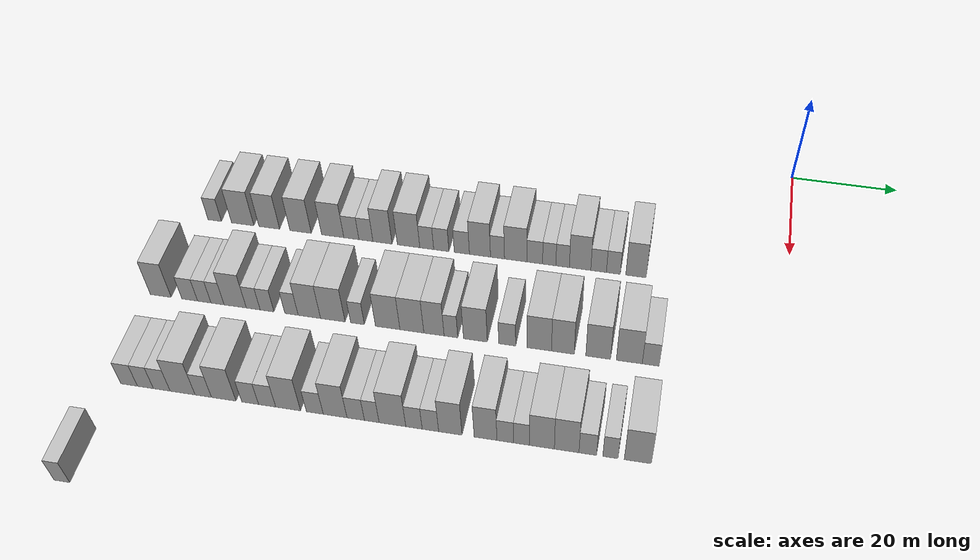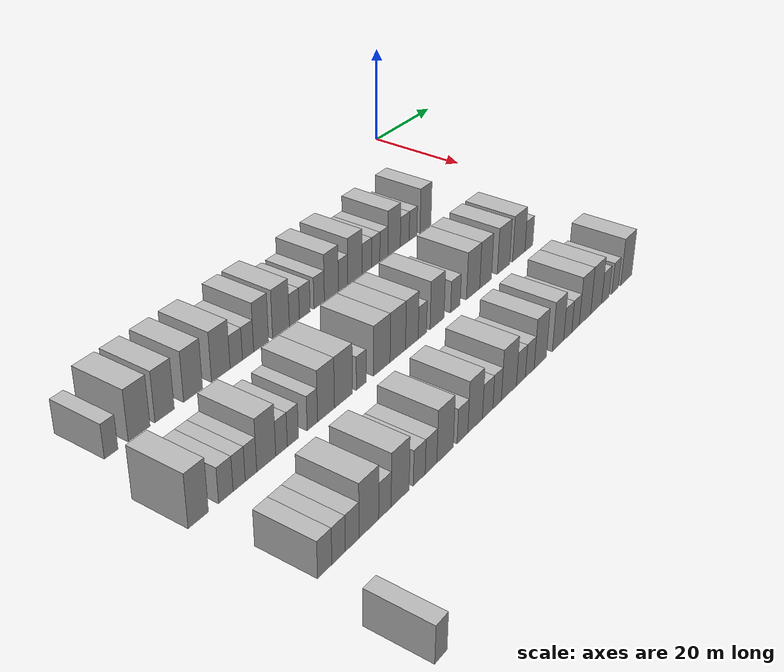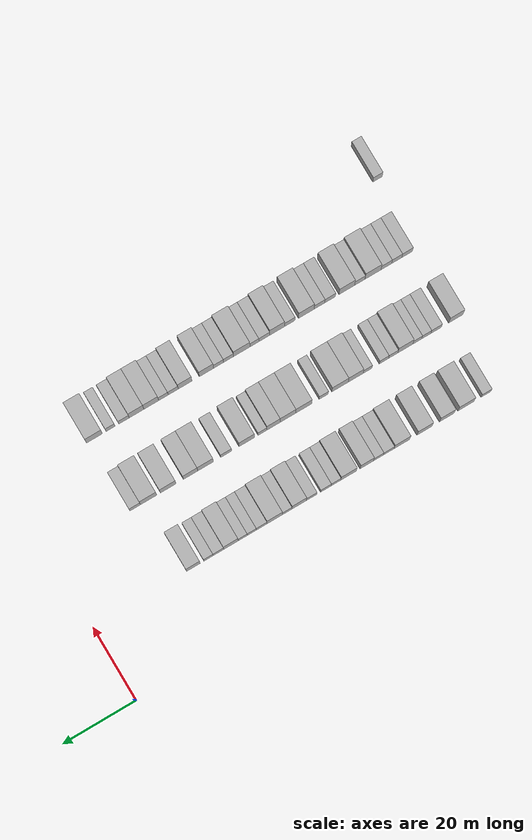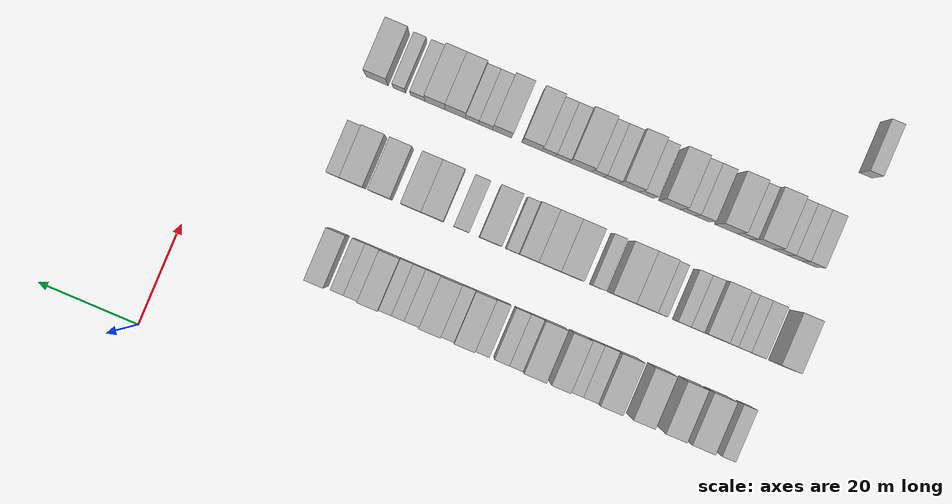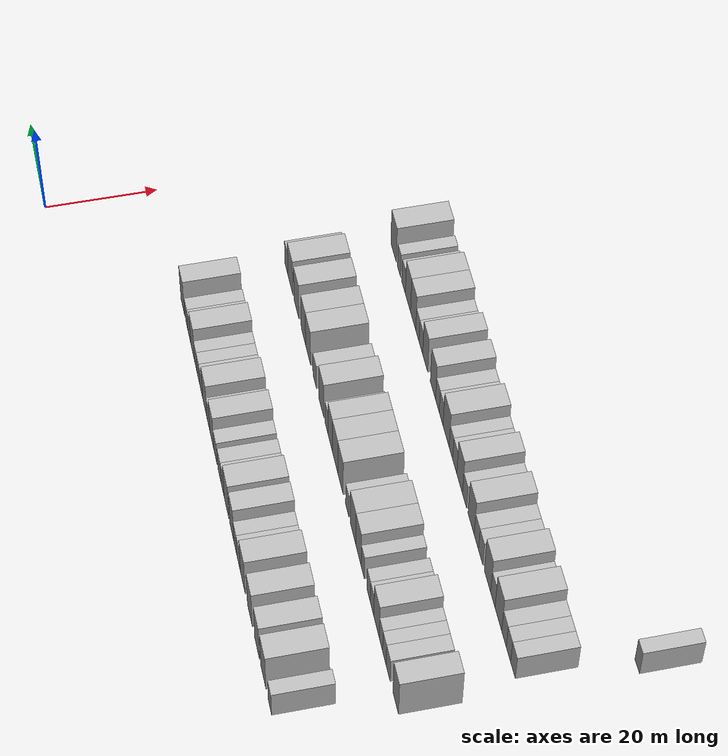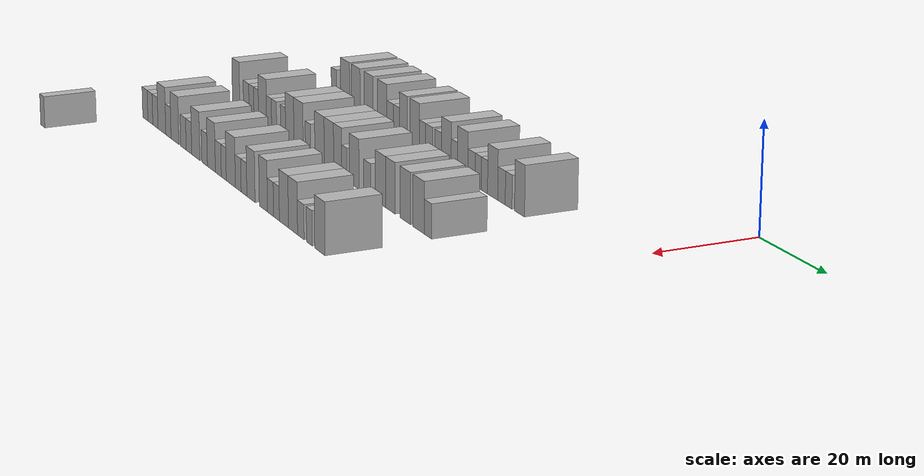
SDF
<sdf version="1.6">
 <world name="default">
  <model name="building_58">
   <static>1</static>
   <pose>25.0000 -107.1280 0 0.000000 0.000000 0.000000</pose>
   <link name="link">
    <pose>0 0 3.00 0 0 0</pose>
    <collision name="collision"><geometry><box><size>10.0000 2.6391 6.0000</size></box></geometry></collision>
    <visual name="visual">
     <cast_shadows>0</cast_shadows>
     <geometry><box><size>10.0000 2.6391 6.0000</size></box></geometry>
     <material>
      <script>
       <uri>model://HANNAS_wall/materials/scripts</uri>
       <uri>model://HANNAS_wall/materials/textures</uri>
       <name>vrc/HANNAS_wall</name>
      </script>
     </material>
    </visual>
   </link>
  </model>
  <model name="building_59">
   <static>1</static>
   <pose>25.0000 -101.6160 0 0.000000 0.000000 0.000000</pose>
   <link name="link">
    <pose>0 0 4.50 0 0 0</pose>
    <collision name="collision"><geometry><box><size>10.0000 4.3848 9.0000</size></box></geometry></collision>
    <visual name="visual">
     <cast_shadows>0</cast_shadows>
     <geometry><box><size>10.0000 4.3848 9.0000</size></box></geometry>
     <material>
      <script>
       <uri>model://HANNAS_wall/materials/scripts</uri>
       <uri>model://HANNAS_wall/materials/textures</uri>
       <name>vrc/HANNAS_wall</name>
      </script>
     </material>
    </visual>
   </link>
  </model>
  <model name="building_60">
   <static>1</static>
   <pose>25.0000 -96.4047 0 0.000000 0.000000 0.000000</pose>
   <link name="link">
    <pose>0 0 4.50 0 0 0</pose>
    <collision name="collision"><geometry><box><size>10.0000 4.0377 9.0000</size></box></geometry></collision>
    <visual name="visual">
     <cast_shadows>0</cast_shadows>
     <geometry><box><size>10.0000 4.0377 9.0000</size></box></geometry>
     <material>
      <script>
       <uri>model://HANNAS_wall/materials/scripts</uri>
       <uri>model://HANNAS_wall/materials/textures</uri>
       <name>vrc/HANNAS_wall</name>
      </script>
     </material>
    </visual>
   </link>
  </model>
  <model name="building_61">
   <static>1</static>
   <pose>25.0000 -90.3034 0 0.000000 0.000000 0.000000</pose>
   <link name="link">
    <pose>0 0 4.50 0 0 0</pose>
    <collision name="collision"><geometry><box><size>10.0000 4.1649 9.0000</size></box></geometry></collision>
    <visual name="visual">
     <cast_shadows>0</cast_shadows>
     <geometry><box><size>10.0000 4.1649 9.0000</size></box></geometry>
     <material>
      <script>
       <uri>model://HANNAS_wall/materials/scripts</uri>
       <uri>model://HANNAS_wall/materials/textures</uri>
       <name>vrc/HANNAS_wall</name>
      </script>
     </material>
    </visual>
   </link>
  </model>
  <model name="building_62">
   <static>1</static>
   <pose>25.0000 -84.0807 0 0.000000 0.000000 0.000000</pose>
   <link name="link">
    <pose>0 0 4.50 0 0 0</pose>
    <collision name="collision"><geometry><box><size>10.0000 4.2804 9.0000</size></box></geometry></collision>
    <visual name="visual">
     <cast_shadows>0</cast_shadows>
     <geometry><box><size>10.0000 4.2804 9.0000</size></box></geometry>
     <material>
      <script>
       <uri>model://HANNAS_wall/materials/scripts</uri>
       <uri>model://HANNAS_wall/materials/textures</uri>
       <name>vrc/HANNAS_wall</name>
      </script>
     </material>
    </visual>
   </link>
  </model>
  <model name="building_63">
   <static>1</static>
   <pose>25.0000 -80.4880 0 0.000000 0.000000 0.000000</pose>
   <link name="link">
    <pose>0 0 3.00 0 0 0</pose>
    <collision name="collision"><geometry><box><size>10.0000 2.9050 6.0000</size></box></geometry></collision>
    <visual name="visual">
     <cast_shadows>0</cast_shadows>
     <geometry><box><size>10.0000 2.9050 6.0000</size></box></geometry>
     <material>
      <script>
       <uri>model://HANNAS_wall/materials/scripts</uri>
       <uri>model://HANNAS_wall/materials/textures</uri>
       <name>vrc/HANNAS_wall</name>
      </script>
     </material>
    </visual>
   </link>
  </model>
  <model name="building_64">
   <static>1</static>
   <pose>25.0000 -77.6878 0 0.000000 0.000000 0.000000</pose>
   <link name="link">
    <pose>0 0 3.00 0 0 0</pose>
    <collision name="collision"><geometry><box><size>10.0000 2.6953 6.0000</size></box></geometry></collision>
    <visual name="visual">
     <cast_shadows>0</cast_shadows>
     <geometry><box><size>10.0000 2.6953 6.0000</size></box></geometry>
     <material>
      <script>
       <uri>model://HANNAS_wall/materials/scripts</uri>
       <uri>model://HANNAS_wall/materials/textures</uri>
       <name>vrc/HANNAS_wall</name>
      </script>
     </material>
    </visual>
   </link>
  </model>
  <model name="building_65">
   <static>1</static>
   <pose>25.0000 -74.5116 0 0.000000 0.000000 0.000000</pose>
   <link name="link">
    <pose>0 0 4.50 0 0 0</pose>
    <collision name="collision"><geometry><box><size>10.0000 3.6572 9.0000</size></box></geometry></collision>
    <visual name="visual">
     <cast_shadows>0</cast_shadows>
     <geometry><box><size>10.0000 3.6572 9.0000</size></box></geometry>
     <material>
      <script>
       <uri>model://HANNAS_wall/materials/scripts</uri>
       <uri>model://HANNAS_wall/materials/textures</uri>
       <name>vrc/HANNAS_wall</name>
      </script>
     </material>
    </visual>
   </link>
  </model>
  <model name="building_66">
   <static>1</static>
   <pose>25.0000 -69.5431 0 0.000000 0.000000 0.000000</pose>
   <link name="link">
    <pose>0 0 4.50 0 0 0</pose>
    <collision name="collision"><geometry><box><size>10.0000 4.2797 9.0000</size></box></geometry></collision>
    <visual name="visual">
     <cast_shadows>0</cast_shadows>
     <geometry><box><size>10.0000 4.2797 9.0000</size></box></geometry>
     <material>
      <script>
       <uri>model://HANNAS_wall/materials/scripts</uri>
       <uri>model://HANNAS_wall/materials/textures</uri>
       <name>vrc/HANNAS_wall</name>
      </script>
     </material>
    </visual>
   </link>
  </model>
  <model name="building_67">
   <static>1</static>
   <pose>25.0000 -66.0903 0 0.000000 0.000000 0.000000</pose>
   <link name="link">
    <pose>0 0 3.00 0 0 0</pose>
    <collision name="collision"><geometry><box><size>10.0000 2.6259 6.0000</size></box></geometry></collision>
    <visual name="visual">
     <cast_shadows>0</cast_shadows>
     <geometry><box><size>10.0000 2.6259 6.0000</size></box></geometry>
     <material>
      <script>
       <uri>model://HANNAS_wall/materials/scripts</uri>
       <uri>model://HANNAS_wall/materials/textures</uri>
       <name>vrc/HANNAS_wall</name>
      </script>
     </material>
    </visual>
   </link>
  </model>
  <model name="building_68">
   <static>1</static>
   <pose>25.0000 -63.3361 0 0.000000 0.000000 0.000000</pose>
   <link name="link">
    <pose>0 0 3.00 0 0 0</pose>
    <collision name="collision"><geometry><box><size>10.0000 2.8825 6.0000</size></box></geometry></collision>
    <visual name="visual">
     <cast_shadows>0</cast_shadows>
     <geometry><box><size>10.0000 2.8825 6.0000</size></box></geometry>
     <material>
      <script>
       <uri>model://HANNAS_wall/materials/scripts</uri>
       <uri>model://HANNAS_wall/materials/textures</uri>
       <name>vrc/HANNAS_wall</name>
      </script>
     </material>
    </visual>
   </link>
  </model>
  <model name="building_69">
   <static>1</static>
   <pose>25.0000 -59.4682 0 0.000000 0.000000 0.000000</pose>
   <link name="link">
    <pose>0 0 3.00 0 0 0</pose>
    <collision name="collision"><geometry><box><size>10.0000 2.8532 6.0000</size></box></geometry></collision>
    <visual name="visual">
     <cast_shadows>0</cast_shadows>
     <geometry><box><size>10.0000 2.8532 6.0000</size></box></geometry>
     <material>
      <script>
       <uri>model://HANNAS_wall/materials/scripts</uri>
       <uri>model://HANNAS_wall/materials/textures</uri>
       <name>vrc/HANNAS_wall</name>
      </script>
     </material>
    </visual>
   </link>
  </model>
  <model name="building_70">
   <static>1</static>
   <pose>25.0000 -56.0699 0 0.000000 0.000000 0.000000</pose>
   <link name="link">
    <pose>0 0 4.50 0 0 0</pose>
    <collision name="collision"><geometry><box><size>10.0000 3.9436 9.0000</size></box></geometry></collision>
    <visual name="visual">
     <cast_shadows>0</cast_shadows>
     <geometry><box><size>10.0000 3.9436 9.0000</size></box></geometry>
     <material>
      <script>
       <uri>model://HANNAS_wall/materials/scripts</uri>
       <uri>model://HANNAS_wall/materials/textures</uri>
       <name>vrc/HANNAS_wall</name>
      </script>
     </material>
    </visual>
   </link>
  </model>
  <model name="building_71">
   <static>1</static>
   <pose>25.0000 -52.7900 0 0.000000 0.000000 0.000000</pose>
   <link name="link">
    <pose>0 0 3.00 0 0 0</pose>
    <collision name="collision"><geometry><box><size>10.0000 2.6162 6.0000</size></box></geometry></collision>
    <visual name="visual">
     <cast_shadows>0</cast_shadows>
     <geometry><box><size>10.0000 2.6162 6.0000</size></box></geometry>
     <material>
      <script>
       <uri>model://HANNAS_wall/materials/scripts</uri>
       <uri>model://HANNAS_wall/materials/textures</uri>
       <name>vrc/HANNAS_wall</name>
      </script>
     </material>
    </visual>
   </link>
  </model>
  <model name="building_72">
   <static>1</static>
   <pose>25.0000 -49.3965 0 0.000000 0.000000 0.000000</pose>
   <link name="link">
    <pose>0 0 4.50 0 0 0</pose>
    <collision name="collision"><geometry><box><size>10.0000 4.1708 9.0000</size></box></geometry></collision>
    <visual name="visual">
     <cast_shadows>0</cast_shadows>
     <geometry><box><size>10.0000 4.1708 9.0000</size></box></geometry>
     <material>
      <script>
       <uri>model://HANNAS_wall/materials/scripts</uri>
       <uri>model://HANNAS_wall/materials/textures</uri>
       <name>vrc/HANNAS_wall</name>
      </script>
     </material>
    </visual>
   </link>
  </model>
  <model name="building_73">
   <static>1</static>
   <pose>25.0000 -45.8571 0 0.000000 0.000000 0.000000</pose>
   <link name="link">
    <pose>0 0 3.00 0 0 0</pose>
    <collision name="collision"><geometry><box><size>10.0000 2.9080 6.0000</size></box></geometry></collision>
    <visual name="visual">
     <cast_shadows>0</cast_shadows>
     <geometry><box><size>10.0000 2.9080 6.0000</size></box></geometry>
     <material>
      <script>
       <uri>model://HANNAS_wall/materials/scripts</uri>
       <uri>model://HANNAS_wall/materials/textures</uri>
       <name>vrc/HANNAS_wall</name>
      </script>
     </material>
    </visual>
   </link>
  </model>
  <model name="building_74">
   <static>1</static>
   <pose>25.0000 -43.1696 0 0.000000 0.000000 0.000000</pose>
   <link name="link">
    <pose>0 0 3.00 0 0 0</pose>
    <collision name="collision"><geometry><box><size>10.0000 2.4669 6.0000</size></box></geometry></collision>
    <visual name="visual">
     <cast_shadows>0</cast_shadows>
     <geometry><box><size>10.0000 2.4669 6.0000</size></box></geometry>
     <material>
      <script>
       <uri>model://HANNAS_wall/materials/scripts</uri>
       <uri>model://HANNAS_wall/materials/textures</uri>
       <name>vrc/HANNAS_wall</name>
      </script>
     </material>
    </visual>
   </link>
  </model>
  <model name="building_75">
   <static>1</static>
   <pose>25.0000 -40.7005 0 0.000000 0.000000 0.000000</pose>
   <link name="link">
    <pose>0 0 3.00 0 0 0</pose>
    <collision name="collision"><geometry><box><size>10.0000 2.4714 6.0000</size></box></geometry></collision>
    <visual name="visual">
     <cast_shadows>0</cast_shadows>
     <geometry><box><size>10.0000 2.4714 6.0000</size></box></geometry>
     <material>
      <script>
       <uri>model://HANNAS_wall/materials/scripts</uri>
       <uri>model://HANNAS_wall/materials/textures</uri>
       <name>vrc/HANNAS_wall</name>
      </script>
     </material>
    </visual>
   </link>
  </model>
  <model name="building_76">
   <static>1</static>
   <pose>25.0000 -37.4976 0 0.000000 0.000000 0.000000</pose>
   <link name="link">
    <pose>0 0 4.50 0 0 0</pose>
    <collision name="collision"><geometry><box><size>10.0000 3.9343 9.0000</size></box></geometry></collision>
    <visual name="visual">
     <cast_shadows>0</cast_shadows>
     <geometry><box><size>10.0000 3.9343 9.0000</size></box></geometry>
     <material>
      <script>
       <uri>model://HANNAS_wall/materials/scripts</uri>
       <uri>model://HANNAS_wall/materials/textures</uri>
       <name>vrc/HANNAS_wall</name>
      </script>
     </material>
    </visual>
   </link>
  </model>
  <model name="building_77">
   <static>1</static>
   <pose>25.0000 -34.1008 0 0.000000 0.000000 0.000000</pose>
   <link name="link">
    <pose>0 0 3.00 0 0 0</pose>
    <collision name="collision"><geometry><box><size>10.0000 2.8594 6.0000</size></box></geometry></collision>
    <visual name="visual">
     <cast_shadows>0</cast_shadows>
     <geometry><box><size>10.0000 2.8594 6.0000</size></box></geometry>
     <material>
      <script>
       <uri>model://HANNAS_wall/materials/scripts</uri>
       <uri>model://HANNAS_wall/materials/textures</uri>
       <name>vrc/HANNAS_wall</name>
      </script>
     </material>
    </visual>
   </link>
  </model>
  <model name="building_78">
   <static>1</static>
   <pose>25.0000 -31.4041 0 0.000000 0.000000 0.000000</pose>
   <link name="link">
    <pose>0 0 3.00 0 0 0</pose>
    <collision name="collision"><geometry><box><size>10.0000 2.5339 6.0000</size></box></geometry></collision>
    <visual name="visual">
     <cast_shadows>0</cast_shadows>
     <geometry><box><size>10.0000 2.5339 6.0000</size></box></geometry>
     <material>
      <script>
       <uri>model://HANNAS_wall/materials/scripts</uri>
       <uri>model://HANNAS_wall/materials/textures</uri>
       <name>vrc/HANNAS_wall</name>
      </script>
     </material>
    </visual>
   </link>
  </model>
  <model name="building_79">
   <static>1</static>
   <pose>25.0000 -27.2897 0 0.000000 0.000000 0.000000</pose>
   <link name="link">
    <pose>0 0 4.50 0 0 0</pose>
    <collision name="collision"><geometry><box><size>10.0000 3.6949 9.0000</size></box></geometry></collision>
    <visual name="visual">
     <cast_shadows>0</cast_shadows>
     <geometry><box><size>10.0000 3.6949 9.0000</size></box></geometry>
     <material>
      <script>
       <uri>model://HANNAS_wall/materials/scripts</uri>
       <uri>model://HANNAS_wall/materials/textures</uri>
       <name>vrc/HANNAS_wall</name>
      </script>
     </material>
    </visual>
   </link>
  </model>
  <model name="building_230">
   <static>1</static>
   <pose>44.0000 -110.2824 0 0.000000 0.000000 0.000000</pose>
   <link name="link">
    <pose>0 0 4.50 0 0 0</pose>
    <collision name="collision"><geometry><box><size>10.0000 3.9110 9.0000</size></box></geometry></collision>
    <visual name="visual">
     <cast_shadows>0</cast_shadows>
     <geometry><box><size>10.0000 3.9110 9.0000</size></box></geometry>
     <material>
      <script>
       <uri>model://HANNAS_wall/materials/scripts</uri>
       <uri>model://HANNAS_wall/materials/textures</uri>
       <name>vrc/HANNAS_wall</name>
      </script>
     </material>
    </visual>
   </link>
  </model>
  <model name="building_231">
   <static>1</static>
   <pose>44.0000 -104.8564 0 0.000000 0.000000 0.000000</pose>
   <link name="link">
    <pose>0 0 3.00 0 0 0</pose>
    <collision name="collision"><geometry><box><size>10.0000 2.9410 6.0000</size></box></geometry></collision>
    <visual name="visual">
     <cast_shadows>0</cast_shadows>
     <geometry><box><size>10.0000 2.9410 6.0000</size></box></geometry>
     <material>
      <script>
       <uri>model://HANNAS_wall/materials/scripts</uri>
       <uri>model://HANNAS_wall/materials/textures</uri>
       <name>vrc/HANNAS_wall</name>
      </script>
     </material>
    </visual>
   </link>
  </model>
  <model name="building_232">
   <static>1</static>
   <pose>44.0000 -102.1391 0 0.000000 0.000000 0.000000</pose>
   <link name="link">
    <pose>0 0 3.00 0 0 0</pose>
    <collision name="collision"><geometry><box><size>10.0000 2.4936 6.0000</size></box></geometry></collision>
    <visual name="visual">
     <cast_shadows>0</cast_shadows>
     <geometry><box><size>10.0000 2.4936 6.0000</size></box></geometry>
     <material>
      <script>
       <uri>model://HANNAS_wall/materials/scripts</uri>
       <uri>model://HANNAS_wall/materials/textures</uri>
       <name>vrc/HANNAS_wall</name>
      </script>
     </material>
    </visual>
   </link>
  </model>
  <model name="building_233">
   <static>1</static>
   <pose>44.0000 -99.6777 0 0.000000 0.000000 0.000000</pose>
   <link name="link">
    <pose>0 0 3.00 0 0 0</pose>
    <collision name="collision"><geometry><box><size>10.0000 2.4291 6.0000</size></box></geometry></collision>
    <visual name="visual">
     <cast_shadows>0</cast_shadows>
     <geometry><box><size>10.0000 2.4291 6.0000</size></box></geometry>
     <material>
      <script>
       <uri>model://HANNAS_wall/materials/scripts</uri>
       <uri>model://HANNAS_wall/materials/textures</uri>
       <name>vrc/HANNAS_wall</name>
      </script>
     </material>
    </visual>
   </link>
  </model>
  <model name="building_234">
   <static>1</static>
   <pose>44.0000 -96.4054 0 0.000000 0.000000 0.000000</pose>
   <link name="link">
    <pose>0 0 4.50 0 0 0</pose>
    <collision name="collision"><geometry><box><size>10.0000 4.1155 9.0000</size></box></geometry></collision>
    <visual name="visual">
     <cast_shadows>0</cast_shadows>
     <geometry><box><size>10.0000 4.1155 9.0000</size></box></geometry>
     <material>
      <script>
       <uri>model://HANNAS_wall/materials/scripts</uri>
       <uri>model://HANNAS_wall/materials/textures</uri>
       <name>vrc/HANNAS_wall</name>
      </script>
     </material>
    </visual>
   </link>
  </model>
  <model name="building_235">
   <static>1</static>
   <pose>44.0000 -93.0726 0 0.000000 0.000000 0.000000</pose>
   <link name="link">
    <pose>0 0 3.00 0 0 0</pose>
    <collision name="collision"><geometry><box><size>10.0000 2.5501 6.0000</size></box></geometry></collision>
    <visual name="visual">
     <cast_shadows>0</cast_shadows>
     <geometry><box><size>10.0000 2.5501 6.0000</size></box></geometry>
     <material>
      <script>
       <uri>model://HANNAS_wall/materials/scripts</uri>
       <uri>model://HANNAS_wall/materials/textures</uri>
       <name>vrc/HANNAS_wall</name>
      </script>
     </material>
    </visual>
   </link>
  </model>
  <model name="building_236">
   <static>1</static>
   <pose>44.0000 -90.5318 0 0.000000 0.000000 0.000000</pose>
   <link name="link">
    <pose>0 0 3.00 0 0 0</pose>
    <collision name="collision"><geometry><box><size>10.0000 2.5314 6.0000</size></box></geometry></collision>
    <visual name="visual">
     <cast_shadows>0</cast_shadows>
     <geometry><box><size>10.0000 2.5314 6.0000</size></box></geometry>
     <material>
      <script>
       <uri>model://HANNAS_wall/materials/scripts</uri>
       <uri>model://HANNAS_wall/materials/textures</uri>
       <name>vrc/HANNAS_wall</name>
      </script>
     </material>
    </visual>
   </link>
  </model>
  <model name="building_237">
   <static>1</static>
   <pose>44.0000 -86.0445 0 0.000000 0.000000 0.000000</pose>
   <link name="link">
    <pose>0 0 3.00 0 0 0</pose>
    <collision name="collision"><geometry><box><size>10.0000 2.4433 6.0000</size></box></geometry></collision>
    <visual name="visual">
     <cast_shadows>0</cast_shadows>
     <geometry><box><size>10.0000 2.4433 6.0000</size></box></geometry>
     <material>
      <script>
       <uri>model://HANNAS_wall/materials/scripts</uri>
       <uri>model://HANNAS_wall/materials/textures</uri>
       <name>vrc/HANNAS_wall</name>
      </script>
     </material>
    </visual>
   </link>
  </model>
  <model name="building_238">
   <static>1</static>
   <pose>44.0000 -82.7851 0 0.000000 0.000000 0.000000</pose>
   <link name="link">
    <pose>0 0 4.50 0 0 0</pose>
    <collision name="collision"><geometry><box><size>10.0000 4.0754 9.0000</size></box></geometry></collision>
    <visual name="visual">
     <cast_shadows>0</cast_shadows>
     <geometry><box><size>10.0000 4.0754 9.0000</size></box></geometry>
     <material>
      <script>
       <uri>model://HANNAS_wall/materials/scripts</uri>
       <uri>model://HANNAS_wall/materials/textures</uri>
       <name>vrc/HANNAS_wall</name>
      </script>
     </material>
    </visual>
   </link>
  </model>
  <model name="building_239">
   <static>1</static>
   <pose>44.0000 -78.5192 0 0.000000 0.000000 0.000000</pose>
   <link name="link">
    <pose>0 0 4.50 0 0 0</pose>
    <collision name="collision"><geometry><box><size>10.0000 4.4563 9.0000</size></box></geometry></collision>
    <visual name="visual">
     <cast_shadows>0</cast_shadows>
     <geometry><box><size>10.0000 4.4563 9.0000</size></box></geometry>
     <material>
      <script>
       <uri>model://HANNAS_wall/materials/scripts</uri>
       <uri>model://HANNAS_wall/materials/textures</uri>
       <name>vrc/HANNAS_wall</name>
      </script>
     </material>
    </visual>
   </link>
  </model>
  <model name="building_240">
   <static>1</static>
   <pose>44.0000 -74.0498 0 0.000000 0.000000 0.000000</pose>
   <link name="link">
    <pose>0 0 3.00 0 0 0</pose>
    <collision name="collision"><geometry><box><size>10.0000 2.4825 6.0000</size></box></geometry></collision>
    <visual name="visual">
     <cast_shadows>0</cast_shadows>
     <geometry><box><size>10.0000 2.4825 6.0000</size></box></geometry>
     <material>
      <script>
       <uri>model://HANNAS_wall/materials/scripts</uri>
       <uri>model://HANNAS_wall/materials/textures</uri>
       <name>vrc/HANNAS_wall</name>
      </script>
     </material>
    </visual>
   </link>
  </model>
  <model name="building_241">
   <static>1</static>
   <pose>44.0000 -68.6111 0 0.000000 0.000000 0.000000</pose>
   <link name="link">
    <pose>0 0 4.50 0 0 0</pose>
    <collision name="collision"><geometry><box><size>10.0000 4.3949 9.0000</size></box></geometry></collision>
    <visual name="visual">
     <cast_shadows>0</cast_shadows>
     <geometry><box><size>10.0000 4.3949 9.0000</size></box></geometry>
     <material>
      <script>
       <uri>model://HANNAS_wall/materials/scripts</uri>
       <uri>model://HANNAS_wall/materials/textures</uri>
       <name>vrc/HANNAS_wall</name>
      </script>
     </material>
    </visual>
   </link>
  </model>
  <model name="building_242">
   <static>1</static>
   <pose>44.0000 -64.2810 0 0.000000 0.000000 0.000000</pose>
   <link name="link">
    <pose>0 0 4.50 0 0 0</pose>
    <collision name="collision"><geometry><box><size>10.0000 4.2653 9.0000</size></box></geometry></collision>
    <visual name="visual">
     <cast_shadows>0</cast_shadows>
     <geometry><box><size>10.0000 4.2653 9.0000</size></box></geometry>
     <material>
      <script>
       <uri>model://HANNAS_wall/materials/scripts</uri>
       <uri>model://HANNAS_wall/materials/textures</uri>
       <name>vrc/HANNAS_wall</name>
      </script>
     </material>
    </visual>
   </link>
  </model>
  <model name="building_243">
   <static>1</static>
   <pose>44.0000 -60.3481 0 0.000000 0.000000 0.000000</pose>
   <link name="link">
    <pose>0 0 4.50 0 0 0</pose>
    <collision name="collision"><geometry><box><size>10.0000 3.6004 9.0000</size></box></geometry></collision>
    <visual name="visual">
     <cast_shadows>0</cast_shadows>
     <geometry><box><size>10.0000 3.6004 9.0000</size></box></geometry>
     <material>
      <script>
       <uri>model://HANNAS_wall/materials/scripts</uri>
       <uri>model://HANNAS_wall/materials/textures</uri>
       <name>vrc/HANNAS_wall</name>
      </script>
     </material>
    </visual>
   </link>
  </model>
  <model name="building_244">
   <static>1</static>
   <pose>44.0000 -57.3349 0 0.000000 0.000000 0.000000</pose>
   <link name="link">
    <pose>0 0 3.00 0 0 0</pose>
    <collision name="collision"><geometry><box><size>10.0000 2.4258 6.0000</size></box></geometry></collision>
    <visual name="visual">
     <cast_shadows>0</cast_shadows>
     <geometry><box><size>10.0000 2.4258 6.0000</size></box></geometry>
     <material>
      <script>
       <uri>model://HANNAS_wall/materials/scripts</uri>
       <uri>model://HANNAS_wall/materials/textures</uri>
       <name>vrc/HANNAS_wall</name>
      </script>
     </material>
    </visual>
   </link>
  </model>
  <model name="building_245">
   <static>1</static>
   <pose>44.0000 -53.0179 0 0.000000 0.000000 0.000000</pose>
   <link name="link">
    <pose>0 0 4.50 0 0 0</pose>
    <collision name="collision"><geometry><box><size>10.0000 4.2082 9.0000</size></box></geometry></collision>
    <visual name="visual">
     <cast_shadows>0</cast_shadows>
     <geometry><box><size>10.0000 4.2082 9.0000</size></box></geometry>
     <material>
      <script>
       <uri>model://HANNAS_wall/materials/scripts</uri>
       <uri>model://HANNAS_wall/materials/textures</uri>
       <name>vrc/HANNAS_wall</name>
      </script>
     </material>
    </visual>
   </link>
  </model>
  <model name="building_246">
   <static>1</static>
   <pose>44.0000 -47.4243 0 0.000000 0.000000 0.000000</pose>
   <link name="link">
    <pose>0 0 3.00 0 0 0</pose>
    <collision name="collision"><geometry><box><size>10.0000 2.9789 6.0000</size></box></geometry></collision>
    <visual name="visual">
     <cast_shadows>0</cast_shadows>
     <geometry><box><size>10.0000 2.9789 6.0000</size></box></geometry>
     <material>
      <script>
       <uri>model://HANNAS_wall/materials/scripts</uri>
       <uri>model://HANNAS_wall/materials/textures</uri>
       <name>vrc/HANNAS_wall</name>
      </script>
     </material>
    </visual>
   </link>
  </model>
  <model name="building_247">
   <static>1</static>
   <pose>44.0000 -41.8098 0 0.000000 0.000000 0.000000</pose>
   <link name="link">
    <pose>0 0 4.50 0 0 0</pose>
    <collision name="collision"><geometry><box><size>10.0000 4.2501 9.0000</size></box></geometry></collision>
    <visual name="visual">
     <cast_shadows>0</cast_shadows>
     <geometry><box><size>10.0000 4.2501 9.0000</size></box></geometry>
     <material>
      <script>
       <uri>model://HANNAS_wall/materials/scripts</uri>
       <uri>model://HANNAS_wall/materials/textures</uri>
       <name>vrc/HANNAS_wall</name>
      </script>
     </material>
    </visual>
   </link>
  </model>
  <model name="building_248">
   <static>1</static>
   <pose>44.0000 -37.7242 0 0.000000 0.000000 0.000000</pose>
   <link name="link">
    <pose>0 0 4.50 0 0 0</pose>
    <collision name="collision"><geometry><box><size>10.0000 3.9211 9.0000</size></box></geometry></collision>
    <visual name="visual">
     <cast_shadows>0</cast_shadows>
     <geometry><box><size>10.0000 3.9211 9.0000</size></box></geometry>
     <material>
      <script>
       <uri>model://HANNAS_wall/materials/scripts</uri>
       <uri>model://HANNAS_wall/materials/textures</uri>
       <name>vrc/HANNAS_wall</name>
      </script>
     </material>
    </visual>
   </link>
  </model>
  <model name="building_249">
   <static>1</static>
   <pose>44.0000 -31.6392 0 0.000000 0.000000 0.000000</pose>
   <link name="link">
    <pose>0 0 4.50 0 0 0</pose>
    <collision name="collision"><geometry><box><size>10.0000 4.2490 9.0000</size></box></geometry></collision>
    <visual name="visual">
     <cast_shadows>0</cast_shadows>
     <geometry><box><size>10.0000 4.2490 9.0000</size></box></geometry>
     <material>
      <script>
       <uri>model://HANNAS_wall/materials/scripts</uri>
       <uri>model://HANNAS_wall/materials/textures</uri>
       <name>vrc/HANNAS_wall</name>
      </script>
     </material>
    </visual>
   </link>
  </model>
  <model name="building_250">
   <static>1</static>
   <pose>44.0000 -26.3021 0 0.000000 0.000000 0.000000</pose>
   <link name="link">
    <pose>0 0 4.50 0 0 0</pose>
    <collision name="collision"><geometry><box><size>10.0000 4.4252 9.0000</size></box></geometry></collision>
    <visual name="visual">
     <cast_shadows>0</cast_shadows>
     <geometry><box><size>10.0000 4.4252 9.0000</size></box></geometry>
     <material>
      <script>
       <uri>model://HANNAS_wall/materials/scripts</uri>
       <uri>model://HANNAS_wall/materials/textures</uri>
       <name>vrc/HANNAS_wall</name>
      </script>
     </material>
    </visual>
   </link>
  </model>
  <model name="building_251">
   <static>1</static>
   <pose>44.0000 -22.6522 0 0.000000 0.000000 0.000000</pose>
   <link name="link">
    <pose>0 0 3.00 0 0 0</pose>
    <collision name="collision"><geometry><box><size>10.0000 2.8745 6.0000</size></box></geometry></collision>
    <visual name="visual">
     <cast_shadows>0</cast_shadows>
     <geometry><box><size>10.0000 2.8745 6.0000</size></box></geometry>
     <material>
      <script>
       <uri>model://HANNAS_wall/materials/scripts</uri>
       <uri>model://HANNAS_wall/materials/textures</uri>
       <name>vrc/HANNAS_wall</name>
      </script>
     </material>
    </visual>
   </link>
  </model>
  <model name="building_411">
   <static>1</static>
   <pose>63.0000 -108.2793 0 0.000000 0.000000 0.000000</pose>
   <link name="link">
    <pose>0 0 3.00 0 0 0</pose>
    <collision name="collision"><geometry><box><size>10.0000 2.9293 6.0000</size></box></geometry></collision>
    <visual name="visual">
     <cast_shadows>0</cast_shadows>
     <geometry><box><size>10.0000 2.9293 6.0000</size></box></geometry>
     <material>
      <script>
       <uri>model://HANNAS_wall/materials/scripts</uri>
       <uri>model://HANNAS_wall/materials/textures</uri>
       <name>vrc/HANNAS_wall</name>
      </script>
     </material>
    </visual>
   </link>
  </model>
  <model name="building_412">
   <static>1</static>
   <pose>63.0000 -105.4114 0 0.000000 0.000000 0.000000</pose>
   <link name="link">
    <pose>0 0 3.00 0 0 0</pose>
    <collision name="collision"><geometry><box><size>10.0000 2.8065 6.0000</size></box></geometry></collision>
    <visual name="visual">
     <cast_shadows>0</cast_shadows>
     <geometry><box><size>10.0000 2.8065 6.0000</size></box></geometry>
     <material>
      <script>
       <uri>model://HANNAS_wall/materials/scripts</uri>
       <uri>model://HANNAS_wall/materials/textures</uri>
       <name>vrc/HANNAS_wall</name>
      </script>
     </material>
    </visual>
   </link>
  </model>
  <model name="building_413">
   <static>1</static>
   <pose>63.0000 -102.5342 0 0.000000 0.000000 0.000000</pose>
   <link name="link">
    <pose>0 0 3.00 0 0 0</pose>
    <collision name="collision"><geometry><box><size>10.0000 2.9479 6.0000</size></box></geometry></collision>
    <visual name="visual">
     <cast_shadows>0</cast_shadows>
     <geometry><box><size>10.0000 2.9479 6.0000</size></box></geometry>
     <material>
      <script>
       <uri>model://HANNAS_wall/materials/scripts</uri>
       <uri>model://HANNAS_wall/materials/textures</uri>
       <name>vrc/HANNAS_wall</name>
      </script>
     </material>
    </visual>
   </link>
  </model>
  <model name="building_414">
   <static>1</static>
   <pose>63.0000 -98.8764 0 0.000000 0.000000 0.000000</pose>
   <link name="link">
    <pose>0 0 4.50 0 0 0</pose>
    <collision name="collision"><geometry><box><size>10.0000 4.3677 9.0000</size></box></geometry></collision>
    <visual name="visual">
     <cast_shadows>0</cast_shadows>
     <geometry><box><size>10.0000 4.3677 9.0000</size></box></geometry>
     <material>
      <script>
       <uri>model://HANNAS_wall/materials/scripts</uri>
       <uri>model://HANNAS_wall/materials/textures</uri>
       <name>vrc/HANNAS_wall</name>
      </script>
     </material>
    </visual>
   </link>
  </model>
  <model name="building_415">
   <static>1</static>
   <pose>63.0000 -95.2642 0 0.000000 0.000000 0.000000</pose>
   <link name="link">
    <pose>0 0 3.00 0 0 0</pose>
    <collision name="collision"><geometry><box><size>10.0000 2.8566 6.0000</size></box></geometry></collision>
    <visual name="visual">
     <cast_shadows>0</cast_shadows>
     <geometry><box><size>10.0000 2.8566 6.0000</size></box></geometry>
     <material>
      <script>
       <uri>model://HANNAS_wall/materials/scripts</uri>
       <uri>model://HANNAS_wall/materials/textures</uri>
       <name>vrc/HANNAS_wall</name>
      </script>
     </material>
    </visual>
   </link>
  </model>
  <model name="building_416">
   <static>1</static>
   <pose>63.0000 -91.7037 0 0.000000 0.000000 0.000000</pose>
   <link name="link">
    <pose>0 0 4.50 0 0 0</pose>
    <collision name="collision"><geometry><box><size>10.0000 4.2643 9.0000</size></box></geometry></collision>
    <visual name="visual">
     <cast_shadows>0</cast_shadows>
     <geometry><box><size>10.0000 4.2643 9.0000</size></box></geometry>
     <material>
      <script>
       <uri>model://HANNAS_wall/materials/scripts</uri>
       <uri>model://HANNAS_wall/materials/textures</uri>
       <name>vrc/HANNAS_wall</name>
      </script>
     </material>
    </visual>
   </link>
  </model>
  <model name="building_417">
   <static>1</static>
   <pose>63.0000 -87.1186 0 0.000000 0.000000 0.000000</pose>
   <link name="link">
    <pose>0 0 3.00 0 0 0</pose>
    <collision name="collision"><geometry><box><size>10.0000 2.9060 6.0000</size></box></geometry></collision>
    <visual name="visual">
     <cast_shadows>0</cast_shadows>
     <geometry><box><size>10.0000 2.9060 6.0000</size></box></geometry>
     <material>
      <script>
       <uri>model://HANNAS_wall/materials/scripts</uri>
       <uri>model://HANNAS_wall/materials/textures</uri>
       <name>vrc/HANNAS_wall</name>
      </script>
     </material>
    </visual>
   </link>
  </model>
  <model name="building_418">
   <static>1</static>
   <pose>63.0000 -84.1952 0 0.000000 0.000000 0.000000</pose>
   <link name="link">
    <pose>0 0 3.00 0 0 0</pose>
    <collision name="collision"><geometry><box><size>10.0000 2.9407 6.0000</size></box></geometry></collision>
    <visual name="visual">
     <cast_shadows>0</cast_shadows>
     <geometry><box><size>10.0000 2.9407 6.0000</size></box></geometry>
     <material>
      <script>
       <uri>model://HANNAS_wall/materials/scripts</uri>
       <uri>model://HANNAS_wall/materials/textures</uri>
       <name>vrc/HANNAS_wall</name>
      </script>
     </material>
    </visual>
   </link>
  </model>
  <model name="building_419">
   <static>1</static>
   <pose>63.0000 -80.5950 0 0.000000 0.000000 0.000000</pose>
   <link name="link">
    <pose>0 0 4.50 0 0 0</pose>
    <collision name="collision"><geometry><box><size>10.0000 4.2596 9.0000</size></box></geometry></collision>
    <visual name="visual">
     <cast_shadows>0</cast_shadows>
     <geometry><box><size>10.0000 4.2596 9.0000</size></box></geometry>
     <material>
      <script>
       <uri>model://HANNAS_wall/materials/scripts</uri>
       <uri>model://HANNAS_wall/materials/textures</uri>
       <name>vrc/HANNAS_wall</name>
      </script>
     </material>
    </visual>
   </link>
  </model>
  <model name="building_420">
   <static>1</static>
   <pose>63.0000 -76.0301 0 0.000000 0.000000 0.000000</pose>
   <link name="link">
    <pose>0 0 3.00 0 0 0</pose>
    <collision name="collision"><geometry><box><size>10.0000 2.8703 6.0000</size></box></geometry></collision>
    <visual name="visual">
     <cast_shadows>0</cast_shadows>
     <geometry><box><size>10.0000 2.8703 6.0000</size></box></geometry>
     <material>
      <script>
       <uri>model://HANNAS_wall/materials/scripts</uri>
       <uri>model://HANNAS_wall/materials/textures</uri>
       <name>vrc/HANNAS_wall</name>
      </script>
     </material>
    </visual>
   </link>
  </model>
  <model name="building_421">
   <static>1</static>
   <pose>63.0000 -72.5789 0 0.000000 0.000000 0.000000</pose>
   <link name="link">
    <pose>0 0 4.50 0 0 0</pose>
    <collision name="collision"><geometry><box><size>10.0000 4.0320 9.0000</size></box></geometry></collision>
    <visual name="visual">
     <cast_shadows>0</cast_shadows>
     <geometry><box><size>10.0000 4.0320 9.0000</size></box></geometry>
     <material>
      <script>
       <uri>model://HANNAS_wall/materials/scripts</uri>
       <uri>model://HANNAS_wall/materials/textures</uri>
       <name>vrc/HANNAS_wall</name>
      </script>
     </material>
    </visual>
   </link>
  </model>
  <model name="building_422">
   <static>1</static>
   <pose>63.0000 -69.0862 0 0.000000 0.000000 0.000000</pose>
   <link name="link">
    <pose>0 0 3.00 0 0 0</pose>
    <collision name="collision"><geometry><box><size>10.0000 2.9534 6.0000</size></box></geometry></collision>
    <visual name="visual">
     <cast_shadows>0</cast_shadows>
     <geometry><box><size>10.0000 2.9534 6.0000</size></box></geometry>
     <material>
      <script>
       <uri>model://HANNAS_wall/materials/scripts</uri>
       <uri>model://HANNAS_wall/materials/textures</uri>
       <name>vrc/HANNAS_wall</name>
      </script>
     </material>
    </visual>
   </link>
  </model>
  <model name="building_423">
   <static>1</static>
   <pose>63.0000 -66.3754 0 0.000000 0.000000 0.000000</pose>
   <link name="link">
    <pose>0 0 3.00 0 0 0</pose>
    <collision name="collision"><geometry><box><size>10.0000 2.4684 6.0000</size></box></geometry></collision>
    <visual name="visual">
     <cast_shadows>0</cast_shadows>
     <geometry><box><size>10.0000 2.4684 6.0000</size></box></geometry>
     <material>
      <script>
       <uri>model://HANNAS_wall/materials/scripts</uri>
       <uri>model://HANNAS_wall/materials/textures</uri>
       <name>vrc/HANNAS_wall</name>
      </script>
     </material>
    </visual>
   </link>
  </model>
  <model name="building_424">
   <static>1</static>
   <pose>63.0000 -62.9030 0 0.000000 0.000000 0.000000</pose>
   <link name="link">
    <pose>0 0 4.50 0 0 0</pose>
    <collision name="collision"><geometry><box><size>10.0000 4.4764 9.0000</size></box></geometry></collision>
    <visual name="visual">
     <cast_shadows>0</cast_shadows>
     <geometry><box><size>10.0000 4.4764 9.0000</size></box></geometry>
     <material>
      <script>
       <uri>model://HANNAS_wall/materials/scripts</uri>
       <uri>model://HANNAS_wall/materials/textures</uri>
       <name>vrc/HANNAS_wall</name>
      </script>
     </material>
    </visual>
   </link>
  </model>
  <model name="building_425">
   <static>1</static>
   <pose>63.0000 -59.2940 0 0.000000 0.000000 0.000000</pose>
   <link name="link">
    <pose>0 0 3.00 0 0 0</pose>
    <collision name="collision"><geometry><box><size>10.0000 2.7416 6.0000</size></box></geometry></collision>
    <visual name="visual">
     <cast_shadows>0</cast_shadows>
     <geometry><box><size>10.0000 2.7416 6.0000</size></box></geometry>
     <material>
      <script>
       <uri>model://HANNAS_wall/materials/scripts</uri>
       <uri>model://HANNAS_wall/materials/textures</uri>
       <name>vrc/HANNAS_wall</name>
      </script>
     </material>
    </visual>
   </link>
  </model>
  <model name="building_426">
   <static>1</static>
   <pose>63.0000 -56.5559 0 0.000000 0.000000 0.000000</pose>
   <link name="link">
    <pose>0 0 3.00 0 0 0</pose>
    <collision name="collision"><geometry><box><size>10.0000 2.7346 6.0000</size></box></geometry></collision>
    <visual name="visual">
     <cast_shadows>0</cast_shadows>
     <geometry><box><size>10.0000 2.7346 6.0000</size></box></geometry>
     <material>
      <script>
       <uri>model://HANNAS_wall/materials/scripts</uri>
       <uri>model://HANNAS_wall/materials/textures</uri>
       <name>vrc/HANNAS_wall</name>
      </script>
     </material>
    </visual>
   </link>
  </model>
  <model name="building_427">
   <static>1</static>
   <pose>63.0000 -53.2498 0 0.000000 0.000000 0.000000</pose>
   <link name="link">
    <pose>0 0 4.50 0 0 0</pose>
    <collision name="collision"><geometry><box><size>10.0000 3.8777 9.0000</size></box></geometry></collision>
    <visual name="visual">
     <cast_shadows>0</cast_shadows>
     <geometry><box><size>10.0000 3.8777 9.0000</size></box></geometry>
     <material>
      <script>
       <uri>model://HANNAS_wall/materials/scripts</uri>
       <uri>model://HANNAS_wall/materials/textures</uri>
       <name>vrc/HANNAS_wall</name>
      </script>
     </material>
    </visual>
   </link>
  </model>
  <model name="building_428">
   <static>1</static>
   <pose>63.0000 -47.4342 0 0.000000 0.000000 0.000000</pose>
   <link name="link">
    <pose>0 0 4.50 0 0 0</pose>
    <collision name="collision"><geometry><box><size>10.0000 3.7534 9.0000</size></box></geometry></collision>
    <visual name="visual">
     <cast_shadows>0</cast_shadows>
     <geometry><box><size>10.0000 3.7534 9.0000</size></box></geometry>
     <material>
      <script>
       <uri>model://HANNAS_wall/materials/scripts</uri>
       <uri>model://HANNAS_wall/materials/textures</uri>
       <name>vrc/HANNAS_wall</name>
      </script>
     </material>
    </visual>
   </link>
  </model>
  <model name="building_429">
   <static>1</static>
   <pose>63.0000 -44.1875 0 0.000000 0.000000 0.000000</pose>
   <link name="link">
    <pose>0 0 3.00 0 0 0</pose>
    <collision name="collision"><geometry><box><size>10.0000 2.7401 6.0000</size></box></geometry></collision>
    <visual name="visual">
     <cast_shadows>0</cast_shadows>
     <geometry><box><size>10.0000 2.7401 6.0000</size></box></geometry>
     <material>
      <script>
       <uri>model://HANNAS_wall/materials/scripts</uri>
       <uri>model://HANNAS_wall/materials/textures</uri>
       <name>vrc/HANNAS_wall</name>
      </script>
     </material>
    </visual>
   </link>
  </model>
  <model name="building_430">
   <static>1</static>
   <pose>63.0000 -41.5119 0 0.000000 0.000000 0.000000</pose>
   <link name="link">
    <pose>0 0 3.00 0 0 0</pose>
    <collision name="collision"><geometry><box><size>10.0000 2.6111 6.0000</size></box></geometry></collision>
    <visual name="visual">
     <cast_shadows>0</cast_shadows>
     <geometry><box><size>10.0000 2.6111 6.0000</size></box></geometry>
     <material>
      <script>
       <uri>model://HANNAS_wall/materials/scripts</uri>
       <uri>model://HANNAS_wall/materials/textures</uri>
       <name>vrc/HANNAS_wall</name>
      </script>
     </material>
    </visual>
   </link>
  </model>
  <model name="building_431">
   <static>1</static>
   <pose>63.0000 -38.1894 0 0.000000 0.000000 0.000000</pose>
   <link name="link">
    <pose>0 0 4.50 0 0 0</pose>
    <collision name="collision"><geometry><box><size>10.0000 4.0340 9.0000</size></box></geometry></collision>
    <visual name="visual">
     <cast_shadows>0</cast_shadows>
     <geometry><box><size>10.0000 4.0340 9.0000</size></box></geometry>
     <material>
      <script>
       <uri>model://HANNAS_wall/materials/scripts</uri>
       <uri>model://HANNAS_wall/materials/textures</uri>
       <name>vrc/HANNAS_wall</name>
      </script>
     </material>
    </visual>
   </link>
  </model>
  <model name="building_432">
   <static>1</static>
   <pose>63.0000 -34.1788 0 0.000000 0.000000 0.000000</pose>
   <link name="link">
    <pose>0 0 4.50 0 0 0</pose>
    <collision name="collision"><geometry><box><size>10.0000 3.9871 9.0000</size></box></geometry></collision>
    <visual name="visual">
     <cast_shadows>0</cast_shadows>
     <geometry><box><size>10.0000 3.9871 9.0000</size></box></geometry>
     <material>
      <script>
       <uri>model://HANNAS_wall/materials/scripts</uri>
       <uri>model://HANNAS_wall/materials/textures</uri>
       <name>vrc/HANNAS_wall</name>
      </script>
     </material>
    </visual>
   </link>
  </model>
  <model name="building_433">
   <static>1</static>
   <pose>63.0000 -30.7658 0 0.000000 0.000000 0.000000</pose>
   <link name="link">
    <pose>0 0 3.00 0 0 0</pose>
    <collision name="collision"><geometry><box><size>10.0000 2.8389 6.0000</size></box></geometry></collision>
    <visual name="visual">
     <cast_shadows>0</cast_shadows>
     <geometry><box><size>10.0000 2.8389 6.0000</size></box></geometry>
     <material>
      <script>
       <uri>model://HANNAS_wall/materials/scripts</uri>
       <uri>model://HANNAS_wall/materials/textures</uri>
       <name>vrc/HANNAS_wall</name>
      </script>
     </material>
    </visual>
   </link>
  </model>
  <model name="building_434">
   <static>1</static>
   <pose>63.0000 -27.1218 0 0.000000 0.000000 0.000000</pose>
   <link name="link">
    <pose>0 0 3.00 0 0 0</pose>
    <collision name="collision"><geometry><box><size>10.0000 2.4491 6.0000</size></box></geometry></collision>
    <visual name="visual">
     <cast_shadows>0</cast_shadows>
     <geometry><box><size>10.0000 2.4491 6.0000</size></box></geometry>
     <material>
      <script>
       <uri>model://HANNAS_wall/materials/scripts</uri>
       <uri>model://HANNAS_wall/materials/textures</uri>
       <name>vrc/HANNAS_wall</name>
      </script>
     </material>
    </visual>
   </link>
  </model>
  <model name="building_435">
   <static>1</static>
   <pose>63.0000 -22.7321 0 0.000000 0.000000 0.000000</pose>
   <link name="link">
    <pose>0 0 4.50 0 0 0</pose>
    <collision name="collision"><geometry><box><size>10.0000 4.3303 9.0000</size></box></geometry></collision>
    <visual name="visual">
     <cast_shadows>0</cast_shadows>
     <geometry><box><size>10.0000 4.3303 9.0000</size></box></geometry>
     <material>
      <script>
       <uri>model://HANNAS_wall/materials/scripts</uri>
       <uri>model://HANNAS_wall/materials/textures</uri>
       <name>vrc/HANNAS_wall</name>
      </script>
     </material>
    </visual>
   </link>
  </model>
  <model name="building_573">
   <static>1</static>
   <pose>82.0000 -111.5020 0 0.000000 0.000000 0.000000</pose>
   <link name="link">
    <pose>0 0 3.00 0 0 0</pose>
    <collision name="collision"><geometry><box><size>10.0000 2.6068 6.0000</size></box></geometry></collision>
    <visual name="visual">
     <cast_shadows>0</cast_shadows>
     <geometry><box><size>10.0000 2.6068 6.0000</size></box></geometry>
     <material>
      <script>
       <uri>model://HANNAS_wall/materials/scripts</uri>
       <uri>model://HANNAS_wall/materials/textures</uri>
       <name>vrc/HANNAS_wall</name>
      </script>
     </material>
    </visual>
   </link>
  </model>
 </world>
</sdf>
